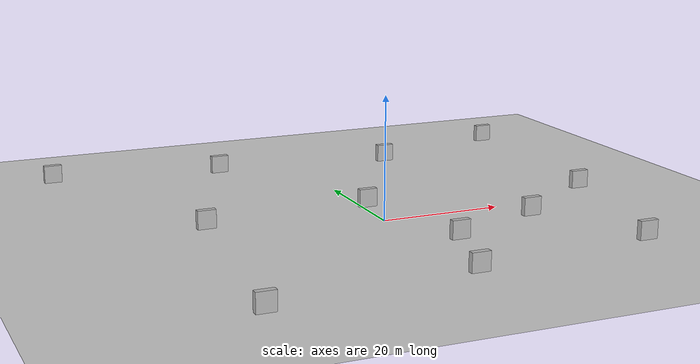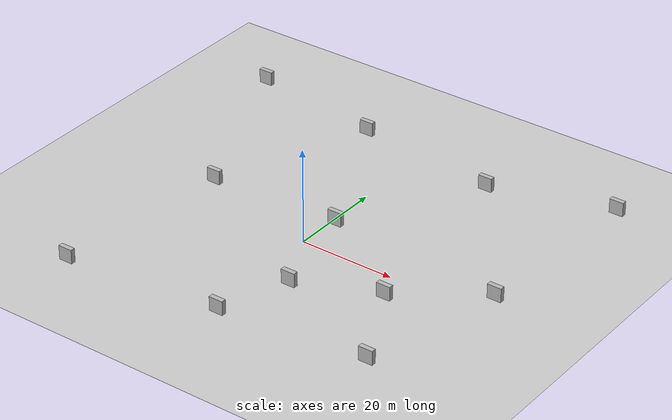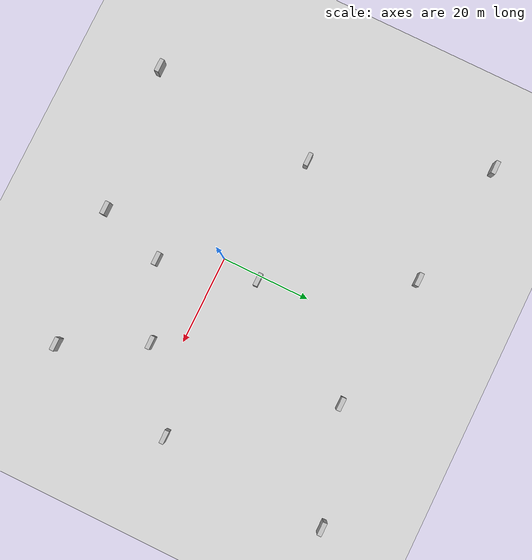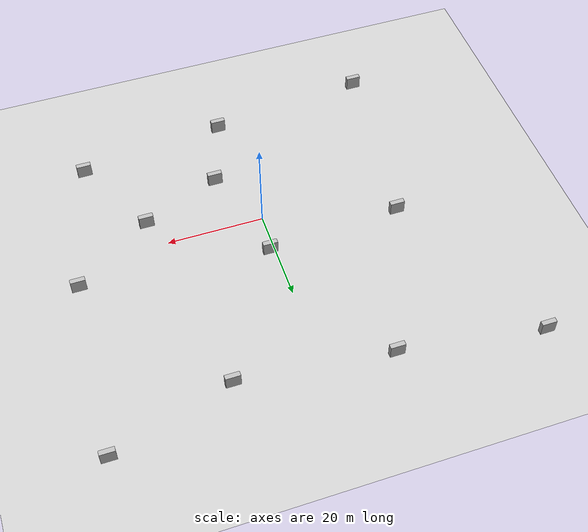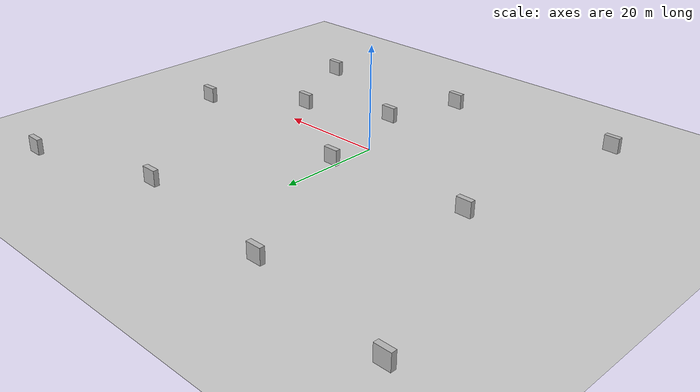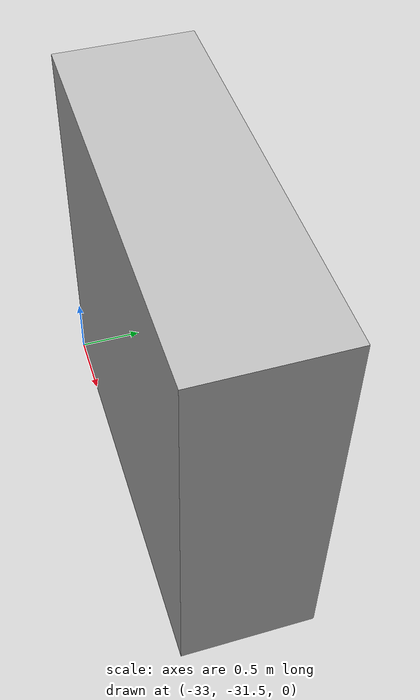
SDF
<sdf version="1.4">
 <world name="default">
  <light name="sun" type="directional">
   <pose>0 0 10 0 -0 0</pose>
   <diffuse>0.8 0.8 0.8 1</diffuse>
   <specular>0.2 0.2 0.2 1</specular>
   <attenuation>
    <range>1000</range>
    <constant>0.9</constant>
    <linear>0.01</linear>
    <quadratic>0.001</quadratic>
   </attenuation>
   <direction>-0.5 0.1 -0.9</direction>
  </light>
  <model name="ground_plane">
   <static>1</static>
   <link name="link">
    <collision name="collision">
     <geometry><plane><normal>0 0 1</normal><size>100 100</size></plane></geometry>
     <surface><friction><ode><mu>100</mu><mu2>50</mu2></ode></friction></surface>
    </collision>
    <visual name="visual">
     <cast_shadows>0</cast_shadows>
     <geometry><plane><normal>0 0 1</normal><size>100 100</size></plane></geometry>
     <material>
      <script><uri>file://media/materials/scripts/gazebo.material</uri><name>Gazebo/Grey</name></script>
     </material>
    </visual>
    <velocity_decay><linear>0</linear><angular>0</angular></velocity_decay>
   </link>
  </model>
  <physics type="ode">
   <max_step_size>0.01</max_step_size>
   <real_time_factor>1</real_time_factor>
   <real_time_update_rate>100</real_time_update_rate>
   <gravity>0 0 -9.8</gravity>
  </physics>
  <scene><ambient>0.4 0.4 0.4 1</ambient><background>0.7 0.7 0.7 1</background><shadows>1</shadows></scene>
  <spherical_coordinates>
   <surface_model>EARTH_WGS84</surface_model>
   <latitude_deg>0</latitude_deg>
   <longitude_deg>0</longitude_deg>
   <elevation>0</elevation>
   <heading_deg>0</heading_deg>
  </spherical_coordinates>
  <model name="brick_box_3x1x3">
   <static>1</static>
   <link name="chassis">
    <pose>0 0 1.5 0 -0 0</pose>
    <collision name="collision"><geometry><box><size>3 1 3</size></box></geometry></collision>
    <visual name="visual">
     <geometry><mesh><uri>model://brick_box_3x1x3/meshes/simple_box.dae</uri><scale>3 1 3</scale></mesh></geometry>
     <material>
      <script>
       <uri>model://brick_box_3x1x3/materials/scripts</uri>
       <uri>model://brick_box_3x1x3/materials/textures</uri>
       <name>BrickBox/Diffuse</name>
      </script>
     </material>
    </visual>
    <velocity_decay><linear>0</linear><angular>0</angular></velocity_decay>
   </link>
   <pose>1.03396 8.67836 0 0 -0 0</pose>
  </model>
  <model name="brick_box_3x1x3_0">
   <static>1</static>
   <link name="chassis">
    <pose>0 0 1.5 0 -0 0</pose>
    <collision name="collision"><geometry><box><size>3 1 3</size></box></geometry></collision>
    <visual name="visual">
     <geometry><mesh><uri>model://brick_box_3x1x3/meshes/simple_box.dae</uri><scale>3 1 3</scale></mesh></geometry>
     <material>
      <script>
       <uri>model://brick_box_3x1x3/materials/scripts</uri>
       <uri>model://brick_box_3x1x3/materials/textures</uri>
       <name>BrickBox/Diffuse</name>
      </script>
     </material>
    </visual>
    <velocity_decay><linear>0</linear><angular>0</angular></velocity_decay>
   </link>
   <pose>6.45642 -12.8123 0 0 -0 0</pose>
  </model>
  <model name="brick_box_3x1x3_2">
   <static>1</static>
   <link name="chassis">
    <pose>0 0 1.5 0 -0 0</pose>
    <collision name="collision"><geometry><box><size>3 1 3</size></box></geometry></collision>
    <visual name="visual">
     <geometry><mesh><uri>model://brick_box_3x1x3/meshes/simple_box.dae</uri><scale>3 1 3</scale></mesh></geometry>
     <material>
      <script>
       <uri>model://brick_box_3x1x3/materials/scripts</uri>
       <uri>model://brick_box_3x1x3/materials/textures</uri>
       <name>BrickBox/Diffuse</name>
      </script>
     </material>
    </visual>
    <velocity_decay><linear>0</linear><angular>0</angular></velocity_decay>
   </link>
   <pose>1.53656 -27.5652 0 0 -0 0</pose>
  </model>
  <model name="brick_box_3x1x3_3">
   <static>1</static>
   <link name="chassis">
    <pose>0 0 1.5 0 -0 0</pose>
    <collision name="collision"><geometry><box><size>3 1 3</size></box></geometry></collision>
    <visual name="visual">
     <geometry><mesh><uri>model://brick_box_3x1x3/meshes/simple_box.dae</uri><scale>3 1 3</scale></mesh></geometry>
     <material>
      <script>
       <uri>model://brick_box_3x1x3/materials/scripts</uri>
       <uri>model://brick_box_3x1x3/materials/textures</uri>
       <name>BrickBox/Diffuse</name>
      </script>
     </material>
    </visual>
    <velocity_decay><linear>0</linear><angular>0</angular></velocity_decay>
   </link>
   <pose>23 -6 0 0 -0 0</pose>
  </model>
  <model name="brick_box_3x1x3_4">
   <static>1</static>
   <link name="chassis">
    <pose>0 0 1.5 0 -0 0</pose>
    <collision name="collision"><geometry><box><size>3 1 3</size></box></geometry></collision>
    <visual name="visual">
     <geometry><mesh><uri>model://brick_box_3x1x3/meshes/simple_box.dae</uri><scale>3 1 3</scale></mesh></geometry>
     <material>
      <script>
       <uri>model://brick_box_3x1x3/materials/scripts</uri>
       <uri>model://brick_box_3x1x3/materials/textures</uri>
       <name>BrickBox/Diffuse</name>
      </script>
     </material>
    </visual>
    <velocity_decay><linear>0</linear><angular>0</angular></velocity_decay>
   </link>
   <pose>32.1445 -24 0 0 -0 0</pose>
  </model>
  <model name="brick_box_3x1x3_5">
   <static>1</static>
   <link name="chassis">
    <pose>0 0 1.5 0 -0 0</pose>
    <collision name="collision"><geometry><box><size>3 1 3</size></box></geometry></collision>
    <visual name="visual">
     <geometry><mesh><uri>model://brick_box_3x1x3/meshes/simple_box.dae</uri><scale>3 1 3</scale></mesh></geometry>
     <material>
      <script>
       <uri>model://brick_box_3x1x3/materials/scripts</uri>
       <uri>model://brick_box_3x1x3/materials/textures</uri>
       <name>BrickBox/Diffuse</name>
      </script>
     </material>
    </visual>
    <velocity_decay><linear>0</linear><angular>0</angular></velocity_decay>
   </link>
   <pose>-27 7 0 0 -0 0</pose>
  </model>
  <model name="brick_box_3x1x3_6">
   <static>1</static>
   <link name="chassis">
    <pose>0 0 1.5 0 -0 0</pose>
    <collision name="collision"><geometry><box><size>3 1 3</size></box></geometry></collision>
    <visual name="visual">
     <geometry><mesh><uri>model://brick_box_3x1x3/meshes/simple_box.dae</uri><scale>3 1 3</scale></mesh></geometry>
     <material>
      <script>
       <uri>model://brick_box_3x1x3/materials/scripts</uri>
       <uri>model://brick_box_3x1x3/materials/textures</uri>
       <name>BrickBox/Diffuse</name>
      </script>
     </material>
    </visual>
    <velocity_decay><linear>0</linear><angular>0</angular></velocity_decay>
   </link>
   <pose>-31.4502 -31 0 0 -0 0</pose>
  </model>
  <model name="brick_box_3x1x3_7">
   <static>1</static>
   <link name="chassis">
    <pose>0 0 1.5 0 -0 0</pose>
    <collision name="collision"><geometry><box><size>3 1 3</size></box></geometry></collision>
    <visual name="visual">
     <geometry><mesh><uri>model://brick_box_3x1x3/meshes/simple_box.dae</uri><scale>3 1 3</scale></mesh></geometry>
     <material>
      <script>
       <uri>model://brick_box_3x1x3/materials/scripts</uri>
       <uri>model://brick_box_3x1x3/materials/textures</uri>
       <name>BrickBox/Diffuse</name>
      </script>
     </material>
    </visual>
    <velocity_decay><linear>0</linear><angular>0</angular></velocity_decay>
   </link>
   <pose>39.4354 5.53148 0 0 -0 0</pose>
  </model>
  <model name="brick_box_3x1x3_8">
   <static>1</static>
   <link name="chassis">
    <pose>0 0 1.5 0 -0 0</pose>
    <collision name="collision"><geometry><box><size>3 1 3</size></box></geometry></collision>
    <visual name="visual">
     <geometry><mesh><uri>model://brick_box_3x1x3/meshes/simple_box.dae</uri><scale>3 1 3</scale></mesh></geometry>
     <material>
      <script>
       <uri>model://brick_box_3x1x3/materials/scripts</uri>
       <uri>model://brick_box_3x1x3/materials/textures</uri>
       <name>BrickBox/Diffuse</name>
      </script>
     </material>
    </visual>
    <velocity_decay><linear>0</linear><angular>0</angular></velocity_decay>
   </link>
   <pose>17 36 0 0 -0 0</pose>
  </model>
  <model name="brick_box_3x1x3_9">
   <static>1</static>
   <link name="chassis">
    <pose>0 0 1.5 0 -0 0</pose>
    <collision name="collision"><geometry><box><size>3 1 3</size></box></geometry></collision>
    <visual name="visual">
     <geometry><mesh><uri>model://brick_box_3x1x3/meshes/simple_box.dae</uri><scale>3 1 3</scale></mesh></geometry>
     <material>
      <script>
       <uri>model://brick_box_3x1x3/materials/scripts</uri>
       <uri>model://brick_box_3x1x3/materials/textures</uri>
       <name>BrickBox/Diffuse</name>
      </script>
     </material>
    </visual>
    <velocity_decay><linear>0</linear><angular>0</angular></velocity_decay>
   </link>
   <pose>-14 39.5411 0 0 -0 0</pose>
  </model>
  <model name="brick_box_3x1x3_10">
   <static>1</static>
   <link name="chassis">
    <pose>0 0 1.5 0 -0 0</pose>
    <collision name="collision"><geometry><box><size>3 1 3</size></box></geometry></collision>
    <visual name="visual">
     <geometry><mesh><uri>model://brick_box_3x1x3/meshes/simple_box.dae</uri><scale>3 1 3</scale></mesh></geometry>
     <material>
      <script>
       <uri>model://brick_box_3x1x3/materials/scripts</uri>
       <uri>model://brick_box_3x1x3/materials/textures</uri>
       <name>BrickBox/Diffuse</name>
      </script>
     </material>
    </visual>
    <velocity_decay><linear>0</linear><angular>0</angular></velocity_decay>
   </link>
   <pose>-43 44 0 0 -0 0</pose>
  </model>
  <model name="brick_box_3x1x3_11">
   <static>1</static>
   <link name="chassis">
    <pose>0 0 1.5 0 -0 0</pose>
    <collision name="collision"><geometry><box><size>3 1 3</size></box></geometry></collision>
    <visual name="visual">
     <geometry><mesh><uri>model://brick_box_3x1x3/meshes/simple_box.dae</uri><scale>3 1 3</scale></mesh></geometry>
     <material>
      <script>
       <uri>model://brick_box_3x1x3/materials/scripts</uri>
       <uri>model://brick_box_3x1x3/materials/textures</uri>
       <name>BrickBox/Diffuse</name>
      </script>
     </material>
    </visual>
    <velocity_decay><linear>0</linear><angular>0</angular></velocity_decay>
   </link>
   <pose>42 43.569 0 0 -0 0</pose>
  </model>
 </world>
</sdf>
